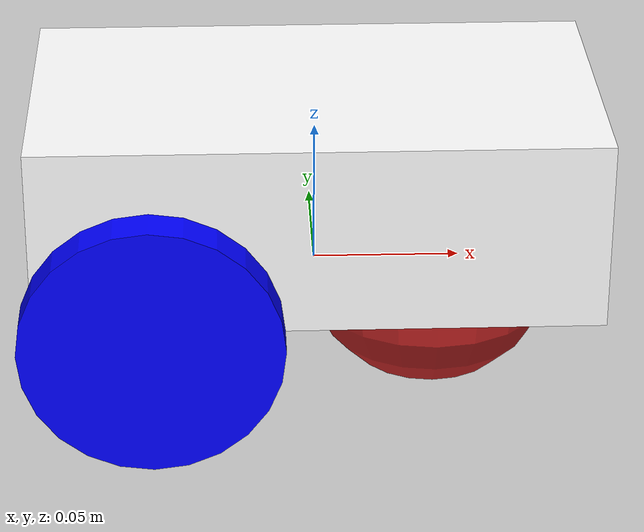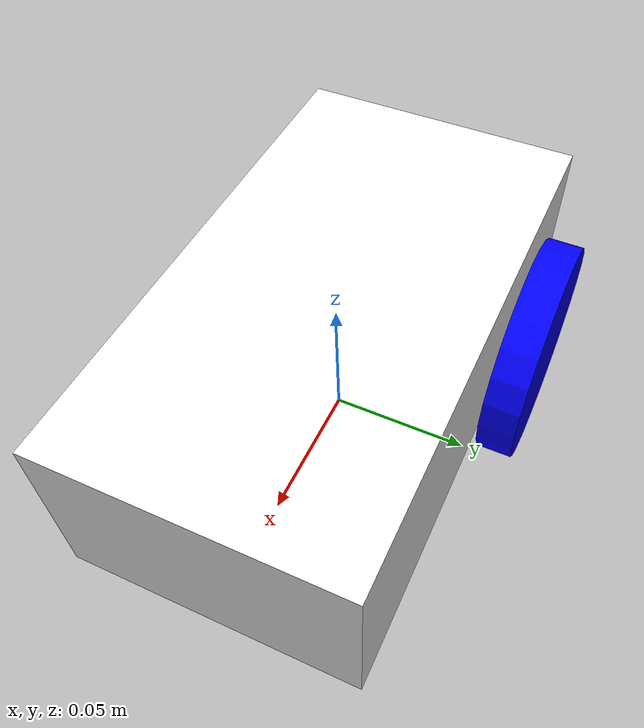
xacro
<?xml version="1.0"?>
<robot xmlns:xacro="http://www.ros.org/wiki/xacro" name="lrd_system">

    <xacro:include filename="chassis.xacro"/>

    <xacro:include filename="gazebo.xacro"/>

    <xacro:include filename="ros2_control.xacro"/>

</robot>

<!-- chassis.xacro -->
<robot xmlns:xacro="http://www.ros.org/wiki/xacro">

    <xacro:include filename="materials.xacro"/>
    <xacro:include filename="inertial_macros.xacro"/>

    <!-- ROVER PROPERTIES -->
    <!-- mass in Kilograms, xyz in meters, rpy in radians -->
    <xacro:property name="wheel_mass" value="0.030"/>
    <xacro:property name="wheel_radius" value="0.044"/>
    <xacro:property name="wheel_width" value="0.01417"/>
    <xacro:property name="wheel_dist_from_center" value="${0.125/2 - 0.01417/2}"/>

    <xacro:property name="caster_wheel_mass" value="0.002"/>
    <xacro:property name="caster_wheel_offset" value="0.135"/>

    <xacro:property name="chassis_mass" value="0.660"/>
    <xacro:property name="chassis_width" value="0.105"/>
    <xacro:property name="chassis_length" value="0.19"/>
    <xacro:property name="chassis_height" value="0.065"/>

    <!-- BASE LINK -->
    <!-- Base link sits at bottom center of chassis -->
    <link name="base_link">
    </link>

    <!-- CHASSIS LINK -->
    <!-- Chassis joint sits at back bottom center -->
    <joint name="chassis_joint" type="fixed">
        <parent link="base_link"/>
        <child link="chassis_link"/>
        <origin xyz="${-chassis_length/2} 0 0"/>
    </joint>

    <link name="chassis_link">
        <visual>
            <origin xyz="${chassis_length/2} 0 ${chassis_height/2}"/>
            <geometry>
                <box size="${chassis_length} ${chassis_width} ${chassis_height}"/>
            </geometry>
            <material name="white"/>
        </visual>

        <collision>
            <origin xyz="${chassis_length/2} 0 ${chassis_height/2}"/>
            <geometry>
                <box size="${chassis_length} ${chassis_width} ${chassis_height}"/>
            </geometry>
        </collision>

        <xacro:inertial_box mass="${chassis_mass}" x="${chassis_length}" y="${chassis_width}" z="${chassis_height}">
            <origin xyz="${chassis_length/2} 0 ${chassis_height/2}" rpy="0 0 0"/>
        </xacro:inertial_box>
    </link>

    <!-- LEFT WHEEL LINK -->
    <joint name="left_wheel_joint" type="continuous">
        <parent link="base_link"/>
        <child link="left_wheel_link"/>
        <origin xyz="${-wheel_dist_from_center} ${chassis_width/2 + wheel_width/2} 0" rpy="${-pi/2} 0 0"/>
        <axis xyz="0 0 1"/>
    </joint>

    <link name="left_wheel_link">
        <visual>
            <geometry>
                <cylinder radius="${wheel_radius}" length="${wheel_width}"/>
            </geometry>
            <material name="blue"/>
        </visual>

        <collision>
            <geometry>
                <cylinder radius="${wheel_radius}" length="${wheel_width}"/>
            </geometry>
        </collision>

        <xacro:inertial_cylinder mass="${wheel_mass}" length="${wheel_width}" radius="${wheel_radius}">
            <origin xyz="0 0 0" rpy="0 0 0"/>
        </xacro:inertial_cylinder>
    </link>

    <!-- RIGHT WHEEL LINK -->
    <joint name="right_wheel_joint" type="continuous">
        <parent link="base_link"/>
        <child link="right_wheel_link"/>
        <origin xyz="${-wheel_dist_from_center} ${-(chassis_width/2 + wheel_width/2)} 0" rpy="${pi/2} 0 0"/>
        <axis xyz="0 0 -1"/>
    </joint>

    <link name="right_wheel_link">
        <visual>
            <geometry>
                <cylinder radius="${wheel_radius}" length="${wheel_width}"/>
            </geometry>
            <material name="blue"/>
        </visual>

        <collision>
            <geometry>
                <cylinder radius="${wheel_radius}" length="${wheel_width}"/>
            </geometry>
        </collision>

        <xacro:inertial_cylinder mass="${wheel_mass}" length="${wheel_width}" radius="${wheel_radius}">
            <origin xyz="0 0 0" rpy="0 0 0"/>
        </xacro:inertial_cylinder>
    </link>

    <!-- CASTER WHEEL LINK -->
    <joint name="caster_wheel_joint" type="fixed">
        <parent link="chassis_link"/>
        <child link="caster_wheel_link"/>
        <origin xyz="${caster_wheel_offset} 0 0"/>
    </joint>

    <link name="caster_wheel_link">
        <visual>
            <geometry>
                <sphere radius="${wheel_radius}"/>
                <material name="red"/>
            </geometry>
        </visual>
        <collision>
            <geometry>
                <sphere radius="${wheel_radius}"/>
            </geometry>
        </collision>

        <xacro:inertial_sphere mass="${caster_wheel_mass}" radius="${wheel_radius}">
            <origin xyz="0 0 0" rpy="0 0 0"/>
        </xacro:inertial_sphere>
    </link>

</robot>

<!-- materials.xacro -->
<robot xmlns:xacro="http://www.ros.org/wiki/xacro">

    <material name="white">
        <color rgba="1 1 1 1" />
    </material>

    <material name="black">
        <color rgba="0 0 0 1" />
    </material>

    <material name="grey">
        <color rgba="0.5 0.5 0.5 1" />
    </material>

    <material name="red">
        <color rgba="1 0 0 1" />
    </material>

    <material name="green">
        <color rgba="0 1 0 1" />
    </material>

    <material name="blue">
        <color rgba="0 0 1 1" />
    </material>

</robot>
